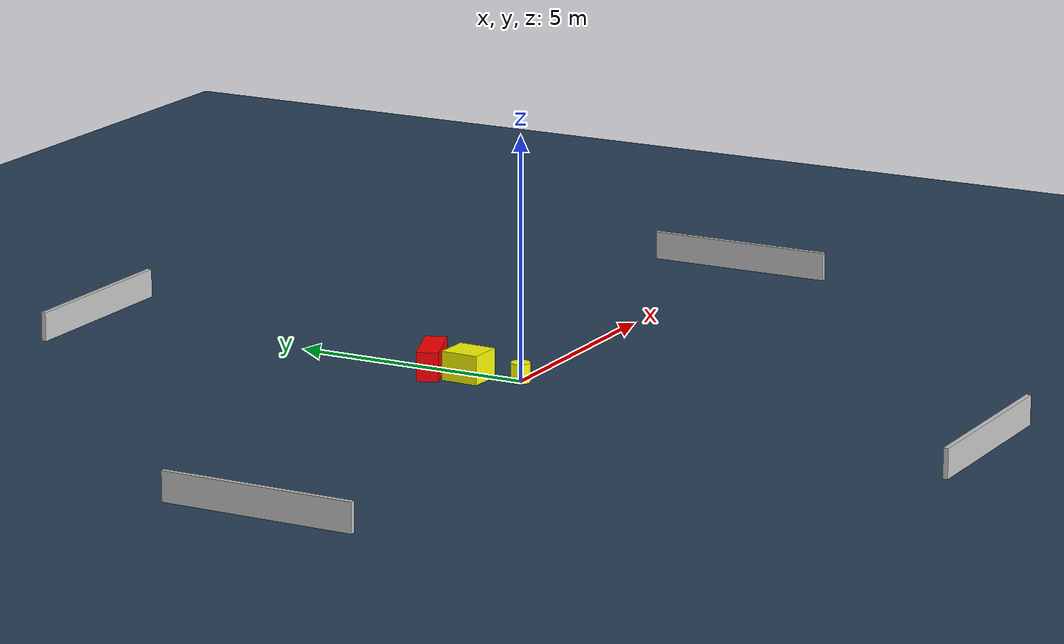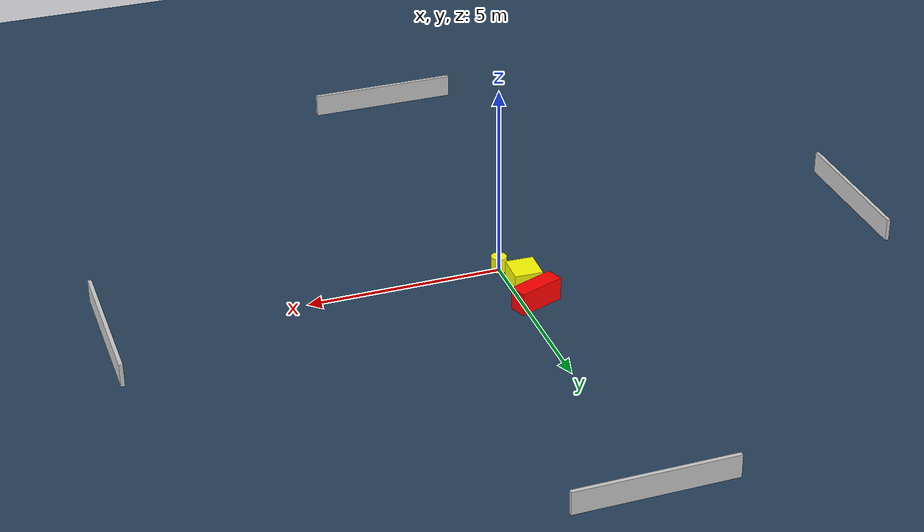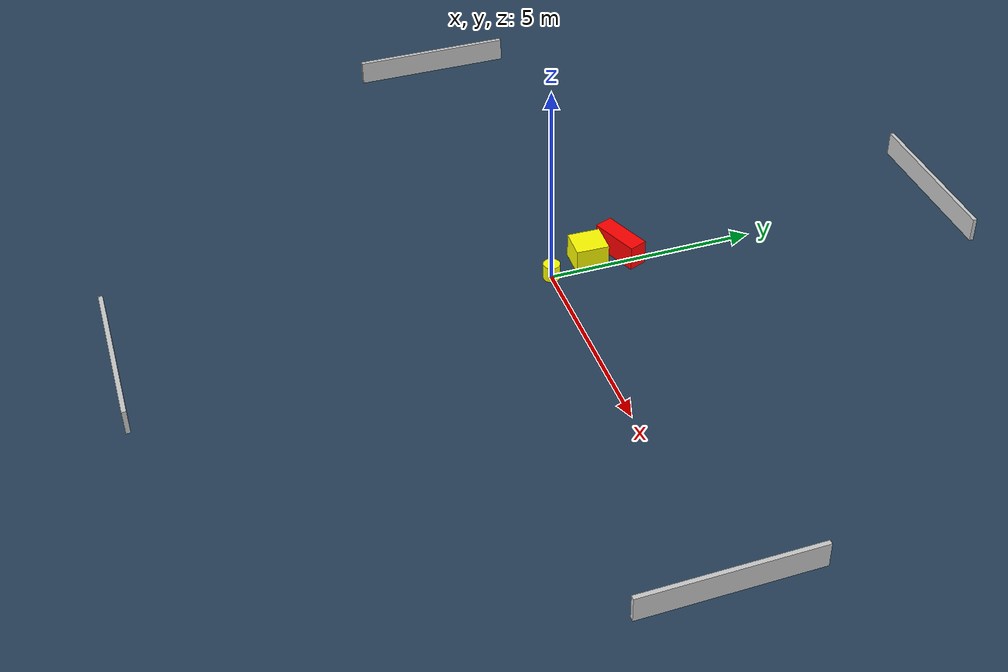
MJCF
<?xml version="1.0" ?>
<mujoco model="generated_environment">
  <option timestep="0.01" integrator="RK4" cone="elliptic"/>
  <default>
    <geom density="1"/>
  </default>
  <asset>
    <texture builtin="gradient" height="3072" name="skybox" rgb1="0.3 0.5 0.7" rgb2="0 0 0" type="skybox" width="512"/>
    <texture builtin="checker" height="300" name="groundplane" rgb1="0.2 0.3 0.4" rgb2="0.1 0.2 0.3" type="2d" width="300"/>
    <material name="groundplane" reflectance="0.2" texrepeat="5 5" texture="groundplane"/>
  </asset>
  <worldbody>
    <light dir="0 0 -1" directional="true" pos="0 0 1.5"/>
    <geom condim="3" friction="0.5 0.005 0.001" material="groundplane" name="floor" pos="0 0 0" size="0 0 0.05" type="plane"/>
    <body name="walls">
      <geom name="wall_1" condim="4" pos="-10.0 0.0 0.3" rgba="0.800000011920929 0.800000011920929 0.800000011920929 1.0" size="0.05 2.0 0.3" type="box"/>
      <geom name="wall_2" condim="4" pos="10.0 0.0 0.3" rgba="0.800000011920929 0.800000011920929 0.800000011920929 1.0" size="0.05 2.0 0.3" type="box"/>
      <geom name="wall_3" condim="4" pos="0.0 -10.0 0.3" rgba="0.800000011920929 0.800000011920929 0.800000011920929 1.0" size="2.0 0.05 0.3" type="box"/>
      <geom name="wall_4" condim="4" pos="0.0 10.0 0.3" rgba="0.800000011920929 0.800000011920929 0.800000011920929 1.0" size="2.0 0.05 0.3" type="box"/>
    </body>
    <body name="robot">
      <joint name="joint_x" type="slide" pos="0 0 0" axis="1 0 0"/>
      <joint name="joint_y" type="slide" pos="0 0 0" axis="0 1 0"/>
      <geom name="robot" type="cylinder" pos="0.0 0.0 0.2" size="0.2 0.2 0.0" mass="5.0" friction="1.0 0.005 0.0001" condim="4" rgba="1.0 1.0 0.0 1.0"/>
    </body>
    <body name="obstacle_1_movable">
      <geom name="obstacle_1_movable" condim="4" pos="-0.29972663524581533 1.014956840853423 0.3" euler="0 0 358.18322306987864" friction="0.0 0.005 0.001" rgba="1.0 1.0 0.0 1.0" size="0.3626209375269432 0.393663539184602 0.3" type="box" mass="0.1"/>
      <joint type="free"/>
    </body>
    <body name="obstacle_2_static">
      <geom name="obstacle_2_static" condim="4" pos="-0.31616456934250387 1.8414358597416112 0.3" euler="0 0 200.90516937764326" friction="0.0 0.005 0.001" rgba="1.0 0.0 0.0 1.0" size="0.6140243953018767 0.2235701381692944 0.3" type="box"/>
    </body>
  </worldbody>
  <actuator>
    <motor name="actuator_x" joint="joint_x" gear="1" ctrlrange="-1 1"/>
    <motor name="actuator_y" joint="joint_y" gear="1" ctrlrange="-1 1"/>
  </actuator>
</mujoco>
